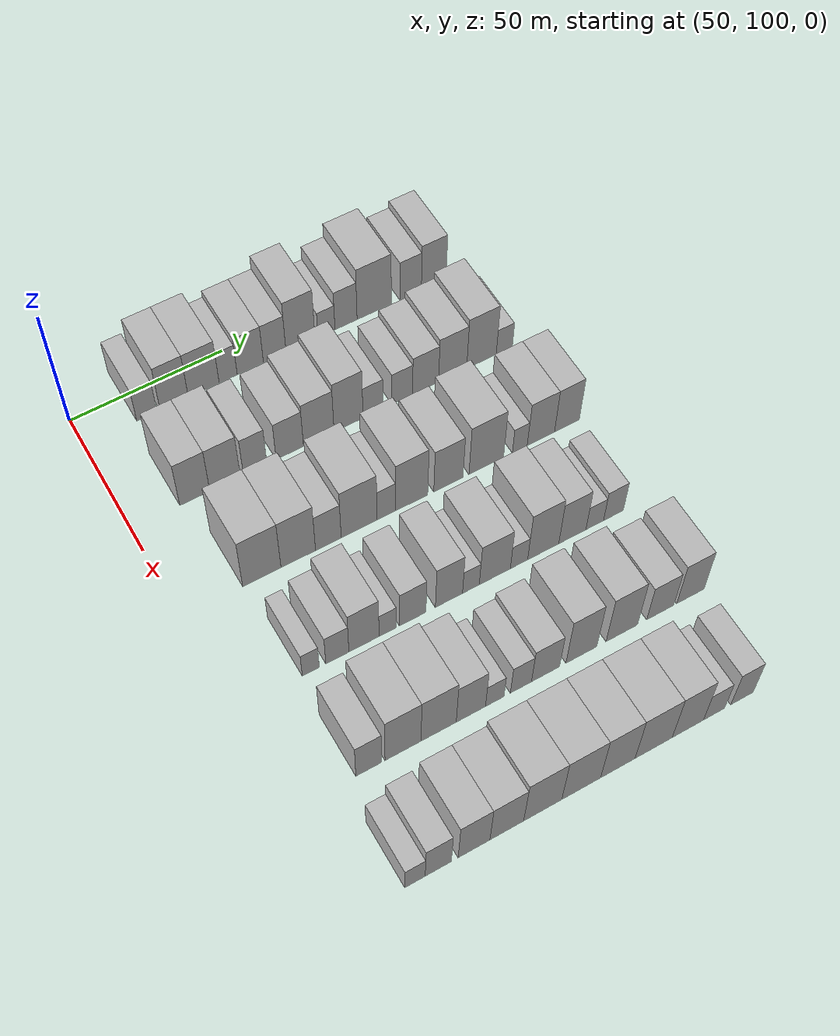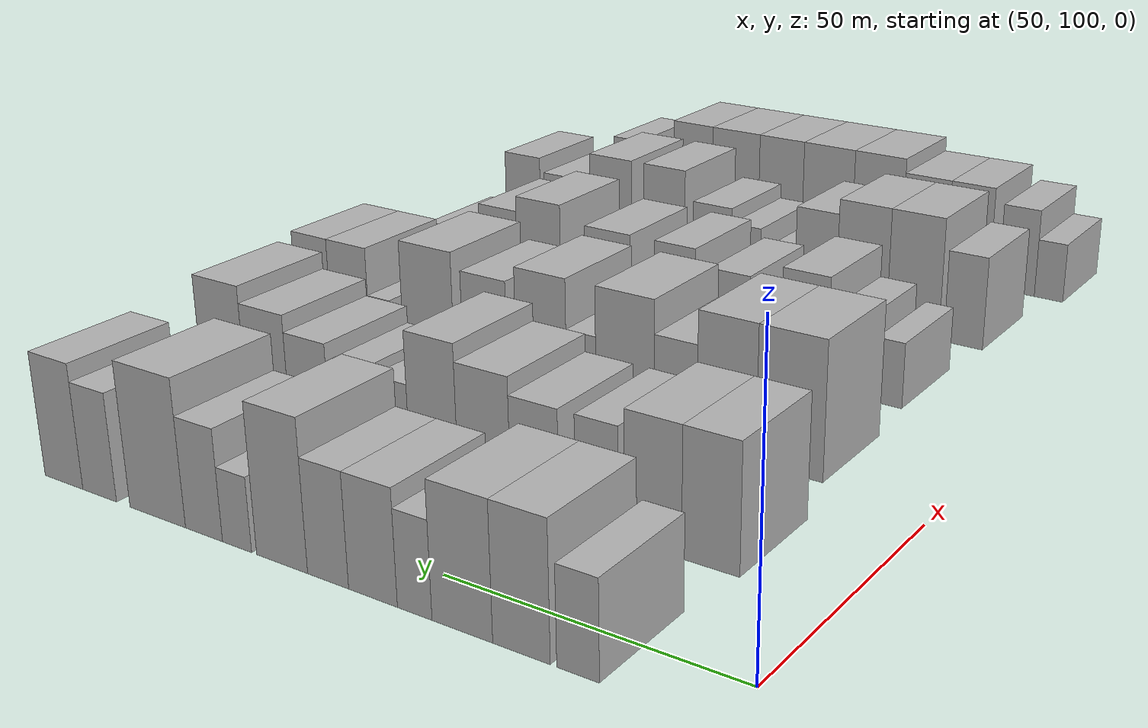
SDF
<sdf version="1.6">
 <world name="default">
  <model name="building_75">
   <static>1</static>
   <pose>50.0000 120.2755 0 0.000000 0.000000 0.000000</pose>
   <link name="link">
    <pose>0 0 7.50 0 0 0</pose>
    <collision name="collision"><geometry><box><size>20.0000 6.5717 15.0000</size></box></geometry></collision>
    <visual name="visual">
     <cast_shadows>0</cast_shadows>
     <geometry><box><size>20.0000 6.5717 15.0000</size></box></geometry>
     <material>
      <script>
       <uri>model://HANNAS_wall/materials/scripts</uri>
       <uri>model://HANNAS_wall/materials/textures</uri>
       <name>vrc/HANNAS_wall</name>
      </script>
     </material>
    </visual>
   </link>
  </model>
  <model name="building_76">
   <static>1</static>
   <pose>50.0000 129.1799 0 0.000000 0.000000 0.000000</pose>
   <link name="link">
    <pose>0 0 10.50 0 0 0</pose>
    <collision name="collision"><geometry><box><size>20.0000 9.2370 21.0000</size></box></geometry></collision>
    <visual name="visual">
     <cast_shadows>0</cast_shadows>
     <geometry><box><size>20.0000 9.2370 21.0000</size></box></geometry>
     <material>
      <script>
       <uri>model://HANNAS_wall/materials/scripts</uri>
       <uri>model://HANNAS_wall/materials/textures</uri>
       <name>vrc/HANNAS_wall</name>
      </script>
     </material>
    </visual>
   </link>
  </model>
  <model name="building_77">
   <static>1</static>
   <pose>50.0000 138.8869 0 0.000000 0.000000 0.000000</pose>
   <link name="link">
    <pose>0 0 10.50 0 0 0</pose>
    <collision name="collision"><geometry><box><size>20.0000 10.1770 21.0000</size></box></geometry></collision>
    <visual name="visual">
     <cast_shadows>0</cast_shadows>
     <geometry><box><size>20.0000 10.1770 21.0000</size></box></geometry>
     <material>
      <script>
       <uri>model://HANNAS_wall/materials/scripts</uri>
       <uri>model://HANNAS_wall/materials/textures</uri>
       <name>vrc/HANNAS_wall</name>
      </script>
     </material>
    </visual>
   </link>
  </model>
  <model name="building_78">
   <static>1</static>
   <pose>50.0000 146.9832 0 0.000000 0.000000 0.000000</pose>
   <link name="link">
    <pose>0 0 7.50 0 0 0</pose>
    <collision name="collision"><geometry><box><size>20.0000 6.0156 15.0000</size></box></geometry></collision>
    <visual name="visual">
     <cast_shadows>0</cast_shadows>
     <geometry><box><size>20.0000 6.0156 15.0000</size></box></geometry>
     <material>
      <script>
       <uri>model://HANNAS_wall/materials/scripts</uri>
       <uri>model://HANNAS_wall/materials/textures</uri>
       <name>vrc/HANNAS_wall</name>
      </script>
     </material>
    </visual>
   </link>
  </model>
  <model name="building_79">
   <static>1</static>
   <pose>50.0000 154.3775 0 0.000000 0.000000 0.000000</pose>
   <link name="link">
    <pose>0 0 9.00 0 0 0</pose>
    <collision name="collision"><geometry><box><size>20.0000 8.7729 18.0000</size></box></geometry></collision>
    <visual name="visual">
     <cast_shadows>0</cast_shadows>
     <geometry><box><size>20.0000 8.7729 18.0000</size></box></geometry>
     <material>
      <script>
       <uri>model://HANNAS_wall/materials/scripts</uri>
       <uri>model://HANNAS_wall/materials/textures</uri>
       <name>vrc/HANNAS_wall</name>
      </script>
     </material>
    </visual>
   </link>
  </model>
  <model name="building_80">
   <static>1</static>
   <pose>50.0000 162.5872 0 0.000000 0.000000 0.000000</pose>
   <link name="link">
    <pose>0 0 9.00 0 0 0</pose>
    <collision name="collision"><geometry><box><size>20.0000 7.6464 18.0000</size></box></geometry></collision>
    <visual name="visual">
     <cast_shadows>0</cast_shadows>
     <geometry><box><size>20.0000 7.6464 18.0000</size></box></geometry>
     <material>
      <script>
       <uri>model://HANNAS_wall/materials/scripts</uri>
       <uri>model://HANNAS_wall/materials/textures</uri>
       <name>vrc/HANNAS_wall</name>
      </script>
     </material>
    </visual>
   </link>
  </model>
  <model name="building_81">
   <static>1</static>
   <pose>50.0000 171.3470 0 0.000000 0.000000 0.000000</pose>
   <link name="link">
    <pose>0 0 12.00 0 0 0</pose>
    <collision name="collision"><geometry><box><size>20.0000 9.8732 24.0000</size></box></geometry></collision>
    <visual name="visual">
     <cast_shadows>0</cast_shadows>
     <geometry><box><size>20.0000 9.8732 24.0000</size></box></geometry>
     <material>
      <script>
       <uri>model://HANNAS_wall/materials/scripts</uri>
       <uri>model://HANNAS_wall/materials/textures</uri>
       <name>vrc/HANNAS_wall</name>
      </script>
     </material>
    </visual>
   </link>
  </model>
  <model name="building_82">
   <static>1</static>
   <pose>50.0000 180.2058 0 0.000000 0.000000 0.000000</pose>
   <link name="link">
    <pose>0 0 6.00 0 0 0</pose>
    <collision name="collision"><geometry><box><size>20.0000 5.8445 12.0000</size></box></geometry></collision>
    <visual name="visual">
     <cast_shadows>0</cast_shadows>
     <geometry><box><size>20.0000 5.8445 12.0000</size></box></geometry>
     <material>
      <script>
       <uri>model://HANNAS_wall/materials/scripts</uri>
       <uri>model://HANNAS_wall/materials/textures</uri>
       <name>vrc/HANNAS_wall</name>
      </script>
     </material>
    </visual>
   </link>
  </model>
  <model name="building_83">
   <static>1</static>
   <pose>50.0000 186.9582 0 0.000000 0.000000 0.000000</pose>
   <link name="link">
    <pose>0 0 9.00 0 0 0</pose>
    <collision name="collision"><geometry><box><size>20.0000 7.6602 18.0000</size></box></geometry></collision>
    <visual name="visual">
     <cast_shadows>0</cast_shadows>
     <geometry><box><size>20.0000 7.6602 18.0000</size></box></geometry>
     <material>
      <script>
       <uri>model://HANNAS_wall/materials/scripts</uri>
       <uri>model://HANNAS_wall/materials/textures</uri>
       <name>vrc/HANNAS_wall</name>
      </script>
     </material>
    </visual>
   </link>
  </model>
  <model name="building_84">
   <static>1</static>
   <pose>50.0000 196.7617 0 0.000000 0.000000 0.000000</pose>
   <link name="link">
    <pose>0 0 12.00 0 0 0</pose>
    <collision name="collision"><geometry><box><size>20.0000 11.9470 24.0000</size></box></geometry></collision>
    <visual name="visual">
     <cast_shadows>0</cast_shadows>
     <geometry><box><size>20.0000 11.9470 24.0000</size></box></geometry>
     <material>
      <script>
       <uri>model://HANNAS_wall/materials/scripts</uri>
       <uri>model://HANNAS_wall/materials/textures</uri>
       <name>vrc/HANNAS_wall</name>
      </script>
     </material>
    </visual>
   </link>
  </model>
  <model name="building_85">
   <static>1</static>
   <pose>50.0000 209.5444 0 0.000000 0.000000 0.000000</pose>
   <link name="link">
    <pose>0 0 9.00 0 0 0</pose>
    <collision name="collision"><geometry><box><size>20.0000 7.6185 18.0000</size></box></geometry></collision>
    <visual name="visual">
     <cast_shadows>0</cast_shadows>
     <geometry><box><size>20.0000 7.6185 18.0000</size></box></geometry>
     <material>
      <script>
       <uri>model://HANNAS_wall/materials/scripts</uri>
       <uri>model://HANNAS_wall/materials/textures</uri>
       <name>vrc/HANNAS_wall</name>
      </script>
     </material>
    </visual>
   </link>
  </model>
  <model name="building_86">
   <static>1</static>
   <pose>50.0000 217.7589 0 0.000000 0.000000 0.000000</pose>
   <link name="link">
    <pose>0 0 10.50 0 0 0</pose>
    <collision name="collision"><geometry><box><size>20.0000 8.8104 21.0000</size></box></geometry></collision>
    <visual name="visual">
     <cast_shadows>0</cast_shadows>
     <geometry><box><size>20.0000 8.8104 21.0000</size></box></geometry>
     <material>
      <script>
       <uri>model://HANNAS_wall/materials/scripts</uri>
       <uri>model://HANNAS_wall/materials/textures</uri>
       <name>vrc/HANNAS_wall</name>
      </script>
     </material>
    </visual>
   </link>
  </model>
  <model name="building_189">
   <static>1</static>
   <pose>82.0000 120.0380 0 0.000000 0.000000 0.000000</pose>
   <link name="link">
    <pose>0 0 10.50 0 0 0</pose>
    <collision name="collision"><geometry><box><size>20.0000 9.5446 21.0000</size></box></geometry></collision>
    <visual name="visual">
     <cast_shadows>0</cast_shadows>
     <geometry><box><size>20.0000 9.5446 21.0000</size></box></geometry>
     <material>
      <script>
       <uri>model://HANNAS_wall/materials/scripts</uri>
       <uri>model://HANNAS_wall/materials/textures</uri>
       <name>vrc/HANNAS_wall</name>
      </script>
     </material>
    </visual>
   </link>
  </model>
  <model name="building_190">
   <static>1</static>
   <pose>82.0000 129.6948 0 0.000000 0.000000 0.000000</pose>
   <link name="link">
    <pose>0 0 10.50 0 0 0</pose>
    <collision name="collision"><geometry><box><size>20.0000 9.7689 21.0000</size></box></geometry></collision>
    <visual name="visual">
     <cast_shadows>0</cast_shadows>
     <geometry><box><size>20.0000 9.7689 21.0000</size></box></geometry>
     <material>
      <script>
       <uri>model://HANNAS_wall/materials/scripts</uri>
       <uri>model://HANNAS_wall/materials/textures</uri>
       <name>vrc/HANNAS_wall</name>
      </script>
     </material>
    </visual>
   </link>
  </model>
  <model name="building_191">
   <static>1</static>
   <pose>82.0000 139.3834 0 0.000000 0.000000 0.000000</pose>
   <link name="link">
    <pose>0 0 9.00 0 0 0</pose>
    <collision name="collision"><geometry><box><size>20.0000 7.6084 18.0000</size></box></geometry></collision>
    <visual name="visual">
     <cast_shadows>0</cast_shadows>
     <geometry><box><size>20.0000 7.6084 18.0000</size></box></geometry>
     <material>
      <script>
       <uri>model://HANNAS_wall/materials/scripts</uri>
       <uri>model://HANNAS_wall/materials/textures</uri>
       <name>vrc/HANNAS_wall</name>
      </script>
     </material>
    </visual>
   </link>
  </model>
  <model name="building_192">
   <static>1</static>
   <pose>82.0000 150.6680 0 0.000000 0.000000 0.000000</pose>
   <link name="link">
    <pose>0 0 9.00 0 0 0</pose>
    <collision name="collision"><geometry><box><size>20.0000 8.9606 18.0000</size></box></geometry></collision>
    <visual name="visual">
     <cast_shadows>0</cast_shadows>
     <geometry><box><size>20.0000 8.9606 18.0000</size></box></geometry>
     <material>
      <script>
       <uri>model://HANNAS_wall/materials/scripts</uri>
       <uri>model://HANNAS_wall/materials/textures</uri>
       <name>vrc/HANNAS_wall</name>
      </script>
     </material>
    </visual>
   </link>
  </model>
  <model name="building_193">
   <static>1</static>
   <pose>82.0000 160.1990 0 0.000000 0.000000 0.000000</pose>
   <link name="link">
    <pose>0 0 10.50 0 0 0</pose>
    <collision name="collision"><geometry><box><size>20.0000 10.1015 21.0000</size></box></geometry></collision>
    <visual name="visual">
     <cast_shadows>0</cast_shadows>
     <geometry><box><size>20.0000 10.1015 21.0000</size></box></geometry>
     <material>
      <script>
       <uri>model://HANNAS_wall/materials/scripts</uri>
       <uri>model://HANNAS_wall/materials/textures</uri>
       <name>vrc/HANNAS_wall</name>
      </script>
     </material>
    </visual>
   </link>
  </model>
  <model name="building_194">
   <static>1</static>
   <pose>82.0000 170.0852 0 0.000000 0.000000 0.000000</pose>
   <link name="link">
    <pose>0 0 12.00 0 0 0</pose>
    <collision name="collision"><geometry><box><size>20.0000 9.6710 24.0000</size></box></geometry></collision>
    <visual name="visual">
     <cast_shadows>0</cast_shadows>
     <geometry><box><size>20.0000 9.6710 24.0000</size></box></geometry>
     <material>
      <script>
       <uri>model://HANNAS_wall/materials/scripts</uri>
       <uri>model://HANNAS_wall/materials/textures</uri>
       <name>vrc/HANNAS_wall</name>
      </script>
     </material>
    </visual>
   </link>
  </model>
  <model name="building_195">
   <static>1</static>
   <pose>82.0000 178.2775 0 0.000000 0.000000 0.000000</pose>
   <link name="link">
    <pose>0 0 7.50 0 0 0</pose>
    <collision name="collision"><geometry><box><size>20.0000 6.7136 15.0000</size></box></geometry></collision>
    <visual name="visual">
     <cast_shadows>0</cast_shadows>
     <geometry><box><size>20.0000 6.7136 15.0000</size></box></geometry>
     <material>
      <script>
       <uri>model://HANNAS_wall/materials/scripts</uri>
       <uri>model://HANNAS_wall/materials/textures</uri>
       <name>vrc/HANNAS_wall</name>
      </script>
     </material>
    </visual>
   </link>
  </model>
  <model name="building_196">
   <static>1</static>
   <pose>82.0000 188.1583 0 0.000000 0.000000 0.000000</pose>
   <link name="link">
    <pose>0 0 7.50 0 0 0</pose>
    <collision name="collision"><geometry><box><size>20.0000 7.0480 15.0000</size></box></geometry></collision>
    <visual name="visual">
     <cast_shadows>0</cast_shadows>
     <geometry><box><size>20.0000 7.0480 15.0000</size></box></geometry>
     <material>
      <script>
       <uri>model://HANNAS_wall/materials/scripts</uri>
       <uri>model://HANNAS_wall/materials/textures</uri>
       <name>vrc/HANNAS_wall</name>
      </script>
     </material>
    </visual>
   </link>
  </model>
  <model name="building_197">
   <static>1</static>
   <pose>82.0000 196.1371 0 0.000000 0.000000 0.000000</pose>
   <link name="link">
    <pose>0 0 9.00 0 0 0</pose>
    <collision name="collision"><geometry><box><size>20.0000 8.9096 18.0000</size></box></geometry></collision>
    <visual name="visual">
     <cast_shadows>0</cast_shadows>
     <geometry><box><size>20.0000 8.9096 18.0000</size></box></geometry>
     <material>
      <script>
       <uri>model://HANNAS_wall/materials/scripts</uri>
       <uri>model://HANNAS_wall/materials/textures</uri>
       <name>vrc/HANNAS_wall</name>
      </script>
     </material>
    </visual>
   </link>
  </model>
  <model name="building_198">
   <static>1</static>
   <pose>82.0000 205.4605 0 0.000000 0.000000 0.000000</pose>
   <link name="link">
    <pose>0 0 10.50 0 0 0</pose>
    <collision name="collision"><geometry><box><size>20.0000 9.7372 21.0000</size></box></geometry></collision>
    <visual name="visual">
     <cast_shadows>0</cast_shadows>
     <geometry><box><size>20.0000 9.7372 21.0000</size></box></geometry>
     <material>
      <script>
       <uri>model://HANNAS_wall/materials/scripts</uri>
       <uri>model://HANNAS_wall/materials/textures</uri>
       <name>vrc/HANNAS_wall</name>
      </script>
     </material>
    </visual>
   </link>
  </model>
  <model name="building_199">
   <static>1</static>
   <pose>82.0000 215.4899 0 0.000000 0.000000 0.000000</pose>
   <link name="link">
    <pose>0 0 12.00 0 0 0</pose>
    <collision name="collision"><geometry><box><size>20.0000 10.3216 24.0000</size></box></geometry></collision>
    <visual name="visual">
     <cast_shadows>0</cast_shadows>
     <geometry><box><size>20.0000 10.3216 24.0000</size></box></geometry>
     <material>
      <script>
       <uri>model://HANNAS_wall/materials/scripts</uri>
       <uri>model://HANNAS_wall/materials/textures</uri>
       <name>vrc/HANNAS_wall</name>
      </script>
     </material>
    </visual>
   </link>
  </model>
  <model name="building_200">
   <static>1</static>
   <pose>82.0000 223.4922 0 0.000000 0.000000 0.000000</pose>
   <link name="link">
    <pose>0 0 6.00 0 0 0</pose>
    <collision name="collision"><geometry><box><size>20.0000 5.6828 12.0000</size></box></geometry></collision>
    <visual name="visual">
     <cast_shadows>0</cast_shadows>
     <geometry><box><size>20.0000 5.6828 12.0000</size></box></geometry>
     <material>
      <script>
       <uri>model://HANNAS_wall/materials/scripts</uri>
       <uri>model://HANNAS_wall/materials/textures</uri>
       <name>vrc/HANNAS_wall</name>
      </script>
     </material>
    </visual>
   </link>
  </model>
  <model name="building_309">
   <static>1</static>
   <pose>114.0000 124.8680 0 0.000000 0.000000 0.000000</pose>
   <link name="link">
    <pose>0 0 12.00 0 0 0</pose>
    <collision name="collision"><geometry><box><size>20.0000 11.9555 24.0000</size></box></geometry></collision>
    <visual name="visual">
     <cast_shadows>0</cast_shadows>
     <geometry><box><size>20.0000 11.9555 24.0000</size></box></geometry>
     <material>
      <script>
       <uri>model://HANNAS_wall/materials/scripts</uri>
       <uri>model://HANNAS_wall/materials/textures</uri>
       <name>vrc/HANNAS_wall</name>
      </script>
     </material>
    </visual>
   </link>
  </model>
  <model name="building_310">
   <static>1</static>
   <pose>114.0000 136.3082 0 0.000000 0.000000 0.000000</pose>
   <link name="link">
    <pose>0 0 12.00 0 0 0</pose>
    <collision name="collision"><geometry><box><size>20.0000 10.9248 24.0000</size></box></geometry></collision>
    <visual name="visual">
     <cast_shadows>0</cast_shadows>
     <geometry><box><size>20.0000 10.9248 24.0000</size></box></geometry>
     <material>
      <script>
       <uri>model://HANNAS_wall/materials/scripts</uri>
       <uri>model://HANNAS_wall/materials/textures</uri>
       <name>vrc/HANNAS_wall</name>
      </script>
     </material>
    </visual>
   </link>
  </model>
  <model name="building_311">
   <static>1</static>
   <pose>114.0000 145.8662 0 0.000000 0.000000 0.000000</pose>
   <link name="link">
    <pose>0 0 9.00 0 0 0</pose>
    <collision name="collision"><geometry><box><size>20.0000 8.1913 18.0000</size></box></geometry></collision>
    <visual name="visual">
     <cast_shadows>0</cast_shadows>
     <geometry><box><size>20.0000 8.1913 18.0000</size></box></geometry>
     <material>
      <script>
       <uri>model://HANNAS_wall/materials/scripts</uri>
       <uri>model://HANNAS_wall/materials/textures</uri>
       <name>vrc/HANNAS_wall</name>
      </script>
     </material>
    </visual>
   </link>
  </model>
  <model name="building_312">
   <static>1</static>
   <pose>114.0000 155.7512 0 0.000000 0.000000 0.000000</pose>
   <link name="link">
    <pose>0 0 12.00 0 0 0</pose>
    <collision name="collision"><geometry><box><size>20.0000 11.5787 24.0000</size></box></geometry></collision>
    <visual name="visual">
     <cast_shadows>0</cast_shadows>
     <geometry><box><size>20.0000 11.5787 24.0000</size></box></geometry>
     <material>
      <script>
       <uri>model://HANNAS_wall/materials/scripts</uri>
       <uri>model://HANNAS_wall/materials/textures</uri>
       <name>vrc/HANNAS_wall</name>
      </script>
     </material>
    </visual>
   </link>
  </model>
  <model name="building_313">
   <static>1</static>
   <pose>114.0000 164.5417 0 0.000000 0.000000 0.000000</pose>
   <link name="link">
    <pose>0 0 7.50 0 0 0</pose>
    <collision name="collision"><geometry><box><size>20.0000 6.0023 15.0000</size></box></geometry></collision>
    <visual name="visual">
     <cast_shadows>0</cast_shadows>
     <geometry><box><size>20.0000 6.0023 15.0000</size></box></geometry>
     <material>
      <script>
       <uri>model://HANNAS_wall/materials/scripts</uri>
       <uri>model://HANNAS_wall/materials/textures</uri>
       <name>vrc/HANNAS_wall</name>
      </script>
     </material>
    </visual>
   </link>
  </model>
  <model name="building_314">
   <static>1</static>
   <pose>114.0000 172.8252 0 0.000000 0.000000 0.000000</pose>
   <link name="link">
    <pose>0 0 12.00 0 0 0</pose>
    <collision name="collision"><geometry><box><size>20.0000 10.5645 24.0000</size></box></geometry></collision>
    <visual name="visual">
     <cast_shadows>0</cast_shadows>
     <geometry><box><size>20.0000 10.5645 24.0000</size></box></geometry>
     <material>
      <script>
       <uri>model://HANNAS_wall/materials/scripts</uri>
       <uri>model://HANNAS_wall/materials/textures</uri>
       <name>vrc/HANNAS_wall</name>
      </script>
     </material>
    </visual>
   </link>
  </model>
  <model name="building_315">
   <static>1</static>
   <pose>114.0000 184.9680 0 0.000000 0.000000 0.000000</pose>
   <link name="link">
    <pose>0 0 10.50 0 0 0</pose>
    <collision name="collision"><geometry><box><size>20.0000 9.7212 21.0000</size></box></geometry></collision>
    <visual name="visual">
     <cast_shadows>0</cast_shadows>
     <geometry><box><size>20.0000 9.7212 21.0000</size></box></geometry>
     <material>
      <script>
       <uri>model://HANNAS_wall/materials/scripts</uri>
       <uri>model://HANNAS_wall/materials/textures</uri>
       <name>vrc/HANNAS_wall</name>
      </script>
     </material>
    </visual>
   </link>
  </model>
  <model name="building_316">
   <static>1</static>
   <pose>114.0000 197.6597 0 0.000000 0.000000 0.000000</pose>
   <link name="link">
    <pose>0 0 12.00 0 0 0</pose>
    <collision name="collision"><geometry><box><size>20.0000 11.6621 24.0000</size></box></geometry></collision>
    <visual name="visual">
     <cast_shadows>0</cast_shadows>
     <geometry><box><size>20.0000 11.6621 24.0000</size></box></geometry>
     <material>
      <script>
       <uri>model://HANNAS_wall/materials/scripts</uri>
       <uri>model://HANNAS_wall/materials/textures</uri>
       <name>vrc/HANNAS_wall</name>
      </script>
     </material>
    </visual>
   </link>
  </model>
  <model name="building_317">
   <static>1</static>
   <pose>114.0000 209.0273 0 0.000000 0.000000 0.000000</pose>
   <link name="link">
    <pose>0 0 6.00 0 0 0</pose>
    <collision name="collision"><geometry><box><size>20.0000 5.0732 12.0000</size></box></geometry></collision>
    <visual name="visual">
     <cast_shadows>0</cast_shadows>
     <geometry><box><size>20.0000 5.0732 12.0000</size></box></geometry>
     <material>
      <script>
       <uri>model://HANNAS_wall/materials/scripts</uri>
       <uri>model://HANNAS_wall/materials/textures</uri>
       <name>vrc/HANNAS_wall</name>
      </script>
     </material>
    </visual>
   </link>
  </model>
  <model name="building_318">
   <static>1</static>
   <pose>114.0000 216.2532 0 0.000000 0.000000 0.000000</pose>
   <link name="link">
    <pose>0 0 10.50 0 0 0</pose>
    <collision name="collision"><geometry><box><size>20.0000 9.3784 21.0000</size></box></geometry></collision>
    <visual name="visual">
     <cast_shadows>0</cast_shadows>
     <geometry><box><size>20.0000 9.3784 21.0000</size></box></geometry>
     <material>
      <script>
       <uri>model://HANNAS_wall/materials/scripts</uri>
       <uri>model://HANNAS_wall/materials/textures</uri>
       <name>vrc/HANNAS_wall</name>
      </script>
     </material>
    </visual>
   </link>
  </model>
  <model name="building_319">
   <static>1</static>
   <pose>114.0000 225.2304 0 0.000000 0.000000 0.000000</pose>
   <link name="link">
    <pose>0 0 10.50 0 0 0</pose>
    <collision name="collision"><geometry><box><size>20.0000 8.5760 21.0000</size></box></geometry></collision>
    <visual name="visual">
     <cast_shadows>0</cast_shadows>
     <geometry><box><size>20.0000 8.5760 21.0000</size></box></geometry>
     <material>
      <script>
       <uri>model://HANNAS_wall/materials/scripts</uri>
       <uri>model://HANNAS_wall/materials/textures</uri>
       <name>vrc/HANNAS_wall</name>
      </script>
     </material>
    </visual>
   </link>
  </model>
  <model name="building_426">
   <static>1</static>
   <pose>146.0000 122.9776 0 0.000000 0.000000 0.000000</pose>
   <link name="link">
    <pose>0 0 6.00 0 0 0</pose>
    <collision name="collision"><geometry><box><size>20.0000 5.2051 12.0000</size></box></geometry></collision>
    <visual name="visual">
     <cast_shadows>0</cast_shadows>
     <geometry><box><size>20.0000 5.2051 12.0000</size></box></geometry>
     <material>
      <script>
       <uri>model://HANNAS_wall/materials/scripts</uri>
       <uri>model://HANNAS_wall/materials/textures</uri>
       <name>vrc/HANNAS_wall</name>
      </script>
     </material>
    </visual>
   </link>
  </model>
  <model name="building_427">
   <static>1</static>
   <pose>146.0000 131.1300 0 0.000000 0.000000 0.000000</pose>
   <link name="link">
    <pose>0 0 7.50 0 0 0</pose>
    <collision name="collision"><geometry><box><size>20.0000 7.0998 15.0000</size></box></geometry></collision>
    <visual name="visual">
     <cast_shadows>0</cast_shadows>
     <geometry><box><size>20.0000 7.0998 15.0000</size></box></geometry>
     <material>
      <script>
       <uri>model://HANNAS_wall/materials/scripts</uri>
       <uri>model://HANNAS_wall/materials/textures</uri>
       <name>vrc/HANNAS_wall</name>
      </script>
     </material>
    </visual>
   </link>
  </model>
  <model name="building_428">
   <static>1</static>
   <pose>146.0000 139.3606 0 0.000000 0.000000 0.000000</pose>
   <link name="link">
    <pose>0 0 10.50 0 0 0</pose>
    <collision name="collision"><geometry><box><size>20.0000 9.3614 21.0000</size></box></geometry></collision>
    <visual name="visual">
     <cast_shadows>0</cast_shadows>
     <geometry><box><size>20.0000 9.3614 21.0000</size></box></geometry>
     <material>
      <script>
       <uri>model://HANNAS_wall/materials/scripts</uri>
       <uri>model://HANNAS_wall/materials/textures</uri>
       <name>vrc/HANNAS_wall</name>
      </script>
     </material>
    </visual>
   </link>
  </model>
  <model name="building_429">
   <static>1</static>
   <pose>146.0000 146.7421 0 0.000000 0.000000 0.000000</pose>
   <link name="link">
    <pose>0 0 6.00 0 0 0</pose>
    <collision name="collision"><geometry><box><size>20.0000 5.4017 12.0000</size></box></geometry></collision>
    <visual name="visual">
     <cast_shadows>0</cast_shadows>
     <geometry><box><size>20.0000 5.4017 12.0000</size></box></geometry>
     <material>
      <script>
       <uri>model://HANNAS_wall/materials/scripts</uri>
       <uri>model://HANNAS_wall/materials/textures</uri>
       <name>vrc/HANNAS_wall</name>
      </script>
     </material>
    </visual>
   </link>
  </model>
  <model name="building_430">
   <static>1</static>
   <pose>146.0000 154.6165 0 0.000000 0.000000 0.000000</pose>
   <link name="link">
    <pose>0 0 9.00 0 0 0</pose>
    <collision name="collision"><geometry><box><size>20.0000 8.3471 18.0000</size></box></geometry></collision>
    <visual name="visual">
     <cast_shadows>0</cast_shadows>
     <geometry><box><size>20.0000 8.3471 18.0000</size></box></geometry>
     <material>
      <script>
       <uri>model://HANNAS_wall/materials/scripts</uri>
       <uri>model://HANNAS_wall/materials/textures</uri>
       <name>vrc/HANNAS_wall</name>
      </script>
     </material>
    </visual>
   </link>
  </model>
  <model name="building_431">
   <static>1</static>
   <pose>146.0000 166.1353 0 0.000000 0.000000 0.000000</pose>
   <link name="link">
    <pose>0 0 10.50 0 0 0</pose>
    <collision name="collision"><geometry><box><size>20.0000 8.6906 21.0000</size></box></geometry></collision>
    <visual name="visual">
     <cast_shadows>0</cast_shadows>
     <geometry><box><size>20.0000 8.6906 21.0000</size></box></geometry>
     <material>
      <script>
       <uri>model://HANNAS_wall/materials/scripts</uri>
       <uri>model://HANNAS_wall/materials/textures</uri>
       <name>vrc/HANNAS_wall</name>
      </script>
     </material>
    </visual>
   </link>
  </model>
  <model name="building_432">
   <static>1</static>
   <pose>146.0000 173.1785 0 0.000000 0.000000 0.000000</pose>
   <link name="link">
    <pose>0 0 6.00 0 0 0</pose>
    <collision name="collision"><geometry><box><size>20.0000 5.3957 12.0000</size></box></geometry></collision>
    <visual name="visual">
     <cast_shadows>0</cast_shadows>
     <geometry><box><size>20.0000 5.3957 12.0000</size></box></geometry>
     <material>
      <script>
       <uri>model://HANNAS_wall/materials/scripts</uri>
       <uri>model://HANNAS_wall/materials/textures</uri>
       <name>vrc/HANNAS_wall</name>
      </script>
     </material>
    </visual>
   </link>
  </model>
  <model name="building_433">
   <static>1</static>
   <pose>146.0000 180.9216 0 0.000000 0.000000 0.000000</pose>
   <link name="link">
    <pose>0 0 10.50 0 0 0</pose>
    <collision name="collision"><geometry><box><size>20.0000 10.0905 21.0000</size></box></geometry></collision>
    <visual name="visual">
     <cast_shadows>0</cast_shadows>
     <geometry><box><size>20.0000 10.0905 21.0000</size></box></geometry>
     <material>
      <script>
       <uri>model://HANNAS_wall/materials/scripts</uri>
       <uri>model://HANNAS_wall/materials/textures</uri>
       <name>vrc/HANNAS_wall</name>
      </script>
     </material>
    </visual>
   </link>
  </model>
  <model name="building_434">
   <static>1</static>
   <pose>146.0000 188.7998 0 0.000000 0.000000 0.000000</pose>
   <link name="link">
    <pose>0 0 6.00 0 0 0</pose>
    <collision name="collision"><geometry><box><size>20.0000 5.6660 12.0000</size></box></geometry></collision>
    <visual name="visual">
     <cast_shadows>0</cast_shadows>
     <geometry><box><size>20.0000 5.6660 12.0000</size></box></geometry>
     <material>
      <script>
       <uri>model://HANNAS_wall/materials/scripts</uri>
       <uri>model://HANNAS_wall/materials/textures</uri>
       <name>vrc/HANNAS_wall</name>
      </script>
     </material>
    </visual>
   </link>
  </model>
  <model name="building_435">
   <static>1</static>
   <pose>146.0000 196.7868 0 0.000000 0.000000 0.000000</pose>
   <link name="link">
    <pose>0 0 12.00 0 0 0</pose>
    <collision name="collision"><geometry><box><size>20.0000 10.3079 24.0000</size></box></geometry></collision>
    <visual name="visual">
     <cast_shadows>0</cast_shadows>
     <geometry><box><size>20.0000 10.3079 24.0000</size></box></geometry>
     <material>
      <script>
       <uri>model://HANNAS_wall/materials/scripts</uri>
       <uri>model://HANNAS_wall/materials/textures</uri>
       <name>vrc/HANNAS_wall</name>
      </script>
     </material>
    </visual>
   </link>
  </model>
  <model name="building_436">
   <static>1</static>
   <pose>146.0000 206.4662 0 0.000000 0.000000 0.000000</pose>
   <link name="link">
    <pose>0 0 10.50 0 0 0</pose>
    <collision name="collision"><geometry><box><size>20.0000 9.0509 21.0000</size></box></geometry></collision>
    <visual name="visual">
     <cast_shadows>0</cast_shadows>
     <geometry><box><size>20.0000 9.0509 21.0000</size></box></geometry>
     <material>
      <script>
       <uri>model://HANNAS_wall/materials/scripts</uri>
       <uri>model://HANNAS_wall/materials/textures</uri>
       <name>vrc/HANNAS_wall</name>
      </script>
     </material>
    </visual>
   </link>
  </model>
  <model name="building_437">
   <static>1</static>
   <pose>146.0000 213.9583 0 0.000000 0.000000 0.000000</pose>
   <link name="link">
    <pose>0 0 6.00 0 0 0</pose>
    <collision name="collision"><geometry><box><size>20.0000 5.9334 12.0000</size></box></geometry></collision>
    <visual name="visual">
     <cast_shadows>0</cast_shadows>
     <geometry><box><size>20.0000 5.9334 12.0000</size></box></geometry>
     <material>
      <script>
       <uri>model://HANNAS_wall/materials/scripts</uri>
       <uri>model://HANNAS_wall/materials/textures</uri>
       <name>vrc/HANNAS_wall</name>
      </script>
     </material>
    </visual>
   </link>
  </model>
  <model name="building_438">
   <static>1</static>
   <pose>146.0000 220.2844 0 0.000000 0.000000 0.000000</pose>
   <link name="link">
    <pose>0 0 7.50 0 0 0</pose>
    <collision name="collision"><geometry><box><size>20.0000 6.7188 15.0000</size></box></geometry></collision>
    <visual name="visual">
     <cast_shadows>0</cast_shadows>
     <geometry><box><size>20.0000 6.7188 15.0000</size></box></geometry>
     <material>
      <script>
       <uri>model://HANNAS_wall/materials/scripts</uri>
       <uri>model://HANNAS_wall/materials/textures</uri>
       <name>vrc/HANNAS_wall</name>
      </script>
     </material>
    </visual>
   </link>
  </model>
  <model name="building_545">
   <static>1</static>
   <pose>178.0000 122.8329 0 0.000000 0.000000 0.000000</pose>
   <link name="link">
    <pose>0 0 9.00 0 0 0</pose>
    <collision name="collision"><geometry><box><size>20.0000 7.7232 18.0000</size></box></geometry></collision>
    <visual name="visual">
     <cast_shadows>0</cast_shadows>
     <geometry><box><size>20.0000 7.7232 18.0000</size></box></geometry>
     <material>
      <script>
       <uri>model://HANNAS_wall/materials/scripts</uri>
       <uri>model://HANNAS_wall/materials/textures</uri>
       <name>vrc/HANNAS_wall</name>
      </script>
     </material>
    </visual>
   </link>
  </model>
  <model name="building_546">
   <static>1</static>
   <pose>178.0000 133.1096 0 0.000000 0.000000 0.000000</pose>
   <link name="link">
    <pose>0 0 12.00 0 0 0</pose>
    <collision name="collision"><geometry><box><size>20.0000 10.8303 24.0000</size></box></geometry></collision>
    <visual name="visual">
     <cast_shadows>0</cast_shadows>
     <geometry><box><size>20.0000 10.8303 24.0000</size></box></geometry>
     <material>
      <script>
       <uri>model://HANNAS_wall/materials/scripts</uri>
       <uri>model://HANNAS_wall/materials/textures</uri>
       <name>vrc/HANNAS_wall</name>
      </script>
     </material>
    </visual>
   </link>
  </model>
  <model name="building_547">
   <static>1</static>
   <pose>178.0000 143.9308 0 0.000000 0.000000 0.000000</pose>
   <link name="link">
    <pose>0 0 12.00 0 0 0</pose>
    <collision name="collision"><geometry><box><size>20.0000 10.8120 24.0000</size></box></geometry></collision>
    <visual name="visual">
     <cast_shadows>0</cast_shadows>
     <geometry><box><size>20.0000 10.8120 24.0000</size></box></geometry>
     <material>
      <script>
       <uri>model://HANNAS_wall/materials/scripts</uri>
       <uri>model://HANNAS_wall/materials/textures</uri>
       <name>vrc/HANNAS_wall</name>
      </script>
     </material>
    </visual>
   </link>
  </model>
  <model name="building_548">
   <static>1</static>
   <pose>178.0000 153.8689 0 0.000000 0.000000 0.000000</pose>
   <link name="link">
    <pose>0 0 10.50 0 0 0</pose>
    <collision name="collision"><geometry><box><size>20.0000 9.0641 21.0000</size></box></geometry></collision>
    <visual name="visual">
     <cast_shadows>0</cast_shadows>
     <geometry><box><size>20.0000 9.0641 21.0000</size></box></geometry>
     <material>
      <script>
       <uri>model://HANNAS_wall/materials/scripts</uri>
       <uri>model://HANNAS_wall/materials/textures</uri>
       <name>vrc/HANNAS_wall</name>
      </script>
     </material>
    </visual>
   </link>
  </model>
  <model name="building_549">
   <static>1</static>
   <pose>178.0000 161.2811 0 0.000000 0.000000 0.000000</pose>
   <link name="link">
    <pose>0 0 6.00 0 0 0</pose>
    <collision name="collision"><geometry><box><size>20.0000 5.7603 12.0000</size></box></geometry></collision>
    <visual name="visual">
     <cast_shadows>0</cast_shadows>
     <geometry><box><size>20.0000 5.7603 12.0000</size></box></geometry>
     <material>
      <script>
       <uri>model://HANNAS_wall/materials/scripts</uri>
       <uri>model://HANNAS_wall/materials/textures</uri>
       <name>vrc/HANNAS_wall</name>
      </script>
     </material>
    </visual>
   </link>
  </model>
  <model name="building_550">
   <static>1</static>
   <pose>178.0000 169.4821 0 0.000000 0.000000 0.000000</pose>
   <link name="link">
    <pose>0 0 7.50 0 0 0</pose>
    <collision name="collision"><geometry><box><size>20.0000 6.6418 15.0000</size></box></geometry></collision>
    <visual name="visual">
     <cast_shadows>0</cast_shadows>
     <geometry><box><size>20.0000 6.6418 15.0000</size></box></geometry>
     <material>
      <script>
       <uri>model://HANNAS_wall/materials/scripts</uri>
       <uri>model://HANNAS_wall/materials/textures</uri>
       <name>vrc/HANNAS_wall</name>
      </script>
     </material>
    </visual>
   </link>
  </model>
  <model name="building_551">
   <static>1</static>
   <pose>178.0000 177.2814 0 0.000000 0.000000 0.000000</pose>
   <link name="link">
    <pose>0 0 9.00 0 0 0</pose>
    <collision name="collision"><geometry><box><size>20.0000 8.9567 18.0000</size></box></geometry></collision>
    <visual name="visual">
     <cast_shadows>0</cast_shadows>
     <geometry><box><size>20.0000 8.9567 18.0000</size></box></geometry>
     <material>
      <script>
       <uri>model://HANNAS_wall/materials/scripts</uri>
       <uri>model://HANNAS_wall/materials/textures</uri>
       <name>vrc/HANNAS_wall</name>
      </script>
     </material>
    </visual>
   </link>
  </model>
  <model name="building_552">
   <static>1</static>
   <pose>178.0000 188.7272 0 0.000000 0.000000 0.000000</pose>
   <link name="link">
    <pose>0 0 12.00 0 0 0</pose>
    <collision name="collision"><geometry><box><size>20.0000 9.9351 24.0000</size></box></geometry></collision>
    <visual name="visual">
     <cast_shadows>0</cast_shadows>
     <geometry><box><size>20.0000 9.9351 24.0000</size></box></geometry>
     <material>
      <script>
       <uri>model://HANNAS_wall/materials/scripts</uri>
       <uri>model://HANNAS_wall/materials/textures</uri>
       <name>vrc/HANNAS_wall</name>
      </script>
     </material>
    </visual>
   </link>
  </model>
  <model name="building_553">
   <static>1</static>
   <pose>178.0000 201.8357 0 0.000000 0.000000 0.000000</pose>
   <link name="link">
    <pose>0 0 12.00 0 0 0</pose>
    <collision name="collision"><geometry><box><size>20.0000 10.2819 24.0000</size></box></geometry></collision>
    <visual name="visual">
     <cast_shadows>0</cast_shadows>
     <geometry><box><size>20.0000 10.2819 24.0000</size></box></geometry>
     <material>
      <script>
       <uri>model://HANNAS_wall/materials/scripts</uri>
       <uri>model://HANNAS_wall/materials/textures</uri>
       <name>vrc/HANNAS_wall</name>
      </script>
     </material>
    </visual>
   </link>
  </model>
  <model name="building_554">
   <static>1</static>
   <pose>178.0000 214.4402 0 0.000000 0.000000 0.000000</pose>
   <link name="link">
    <pose>0 0 9.00 0 0 0</pose>
    <collision name="collision"><geometry><box><size>20.0000 8.9271 18.0000</size></box></geometry></collision>
    <visual name="visual">
     <cast_shadows>0</cast_shadows>
     <geometry><box><size>20.0000 8.9271 18.0000</size></box></geometry>
     <material>
      <script>
       <uri>model://HANNAS_wall/materials/scripts</uri>
       <uri>model://HANNAS_wall/materials/textures</uri>
       <name>vrc/HANNAS_wall</name>
      </script>
     </material>
    </visual>
   </link>
  </model>
  <model name="building_555">
   <static>1</static>
   <pose>178.0000 224.4748 0 0.000000 0.000000 0.000000</pose>
   <link name="link">
    <pose>0 0 10.50 0 0 0</pose>
    <collision name="collision"><geometry><box><size>20.0000 9.1422 21.0000</size></box></geometry></collision>
    <visual name="visual">
     <cast_shadows>0</cast_shadows>
     <geometry><box><size>20.0000 9.1422 21.0000</size></box></geometry>
     <material>
      <script>
       <uri>model://HANNAS_wall/materials/scripts</uri>
       <uri>model://HANNAS_wall/materials/textures</uri>
       <name>vrc/HANNAS_wall</name>
      </script>
     </material>
    </visual>
   </link>
  </model>
  <model name="building_656">
   <static>1</static>
   <pose>210.0000 118.1551 0 0.000000 0.000000 0.000000</pose>
   <link name="link">
    <pose>0 0 6.00 0 0 0</pose>
    <collision name="collision"><geometry><box><size>20.0000 5.9182 12.0000</size></box></geometry></collision>
    <visual name="visual">
     <cast_shadows>0</cast_shadows>
     <geometry><box><size>20.0000 5.9182 12.0000</size></box></geometry>
     <material>
      <script>
       <uri>model://HANNAS_wall/materials/scripts</uri>
       <uri>model://HANNAS_wall/materials/textures</uri>
       <name>vrc/HANNAS_wall</name>
      </script>
     </material>
    </visual>
   </link>
  </model>
  <model name="building_657">
   <static>1</static>
   <pose>210.0000 124.9513 0 0.000000 0.000000 0.000000</pose>
   <link name="link">
    <pose>0 0 9.00 0 0 0</pose>
    <collision name="collision"><geometry><box><size>20.0000 7.6743 18.0000</size></box></geometry></collision>
    <visual name="visual">
     <cast_shadows>0</cast_shadows>
     <geometry><box><size>20.0000 7.6743 18.0000</size></box></geometry>
     <material>
      <script>
       <uri>model://HANNAS_wall/materials/scripts</uri>
       <uri>model://HANNAS_wall/materials/textures</uri>
       <name>vrc/HANNAS_wall</name>
      </script>
     </material>
    </visual>
   </link>
  </model>
  <model name="building_658">
   <static>1</static>
   <pose>210.0000 135.4966 0 0.000000 0.000000 0.000000</pose>
   <link name="link">
    <pose>0 0 10.50 0 0 0</pose>
    <collision name="collision"><geometry><box><size>20.0000 9.4164 21.0000</size></box></geometry></collision>
    <visual name="visual">
     <cast_shadows>0</cast_shadows>
     <geometry><box><size>20.0000 9.4164 21.0000</size></box></geometry>
     <material>
      <script>
       <uri>model://HANNAS_wall/materials/scripts</uri>
       <uri>model://HANNAS_wall/materials/textures</uri>
       <name>vrc/HANNAS_wall</name>
      </script>
     </material>
    </visual>
   </link>
  </model>
  <model name="building_659">
   <static>1</static>
   <pose>210.0000 145.2729 0 0.000000 0.000000 0.000000</pose>
   <link name="link">
    <pose>0 0 10.50 0 0 0</pose>
    <collision name="collision"><geometry><box><size>20.0000 10.1362 21.0000</size></box></geometry></collision>
    <visual name="visual">
     <cast_shadows>0</cast_shadows>
     <geometry><box><size>20.0000 10.1362 21.0000</size></box></geometry>
     <material>
      <script>
       <uri>model://HANNAS_wall/materials/scripts</uri>
       <uri>model://HANNAS_wall/materials/textures</uri>
       <name>vrc/HANNAS_wall</name>
      </script>
     </material>
    </visual>
   </link>
  </model>
  <model name="building_660">
   <static>1</static>
   <pose>210.0000 156.1289 0 0.000000 0.000000 0.000000</pose>
   <link name="link">
    <pose>0 0 12.00 0 0 0</pose>
    <collision name="collision"><geometry><box><size>20.0000 11.5756 24.0000</size></box></geometry></collision>
    <visual name="visual">
     <cast_shadows>0</cast_shadows>
     <geometry><box><size>20.0000 11.5756 24.0000</size></box></geometry>
     <material>
      <script>
       <uri>model://HANNAS_wall/materials/scripts</uri>
       <uri>model://HANNAS_wall/materials/textures</uri>
       <name>vrc/HANNAS_wall</name>
      </script>
     </material>
    </visual>
   </link>
  </model>
  <model name="building_661">
   <static>1</static>
   <pose>210.0000 167.8959 0 0.000000 0.000000 0.000000</pose>
   <link name="link">
    <pose>0 0 12.00 0 0 0</pose>
    <collision name="collision"><geometry><box><size>20.0000 11.9583 24.0000</size></box></geometry></collision>
    <visual name="visual">
     <cast_shadows>0</cast_shadows>
     <geometry><box><size>20.0000 11.9583 24.0000</size></box></geometry>
     <material>
      <script>
       <uri>model://HANNAS_wall/materials/scripts</uri>
       <uri>model://HANNAS_wall/materials/textures</uri>
       <name>vrc/HANNAS_wall</name>
      </script>
     </material>
    </visual>
   </link>
  </model>
  <model name="building_662">
   <static>1</static>
   <pose>210.0000 179.2527 0 0.000000 0.000000 0.000000</pose>
   <link name="link">
    <pose>0 0 12.00 0 0 0</pose>
    <collision name="collision"><geometry><box><size>20.0000 10.7554 24.0000</size></box></geometry></collision>
    <visual name="visual">
     <cast_shadows>0</cast_shadows>
     <geometry><box><size>20.0000 10.7554 24.0000</size></box></geometry>
     <material>
      <script>
       <uri>model://HANNAS_wall/materials/scripts</uri>
       <uri>model://HANNAS_wall/materials/textures</uri>
       <name>vrc/HANNAS_wall</name>
      </script>
     </material>
    </visual>
   </link>
  </model>
  <model name="building_663">
   <static>1</static>
   <pose>210.0000 190.5024 0 0.000000 0.000000 0.000000</pose>
   <link name="link">
    <pose>0 0 12.00 0 0 0</pose>
    <collision name="collision"><geometry><box><size>20.0000 11.7440 24.0000</size></box></geometry></collision>
    <visual name="visual">
     <cast_shadows>0</cast_shadows>
     <geometry><box><size>20.0000 11.7440 24.0000</size></box></geometry>
     <material>
      <script>
       <uri>model://HANNAS_wall/materials/scripts</uri>
       <uri>model://HANNAS_wall/materials/textures</uri>
       <name>vrc/HANNAS_wall</name>
      </script>
     </material>
    </visual>
   </link>
  </model>
  <model name="building_664">
   <static>1</static>
   <pose>210.0000 201.4027 0 0.000000 0.000000 0.000000</pose>
   <link name="link">
    <pose>0 0 12.00 0 0 0</pose>
    <collision name="collision"><geometry><box><size>20.0000 10.0566 24.0000</size></box></geometry></collision>
    <visual name="visual">
     <cast_shadows>0</cast_shadows>
     <geometry><box><size>20.0000 10.0566 24.0000</size></box></geometry>
     <material>
      <script>
       <uri>model://HANNAS_wall/materials/scripts</uri>
       <uri>model://HANNAS_wall/materials/textures</uri>
       <name>vrc/HANNAS_wall</name>
      </script>
     </material>
    </visual>
   </link>
  </model>
  <model name="building_665">
   <static>1</static>
   <pose>210.0000 209.8297 0 0.000000 0.000000 0.000000</pose>
   <link name="link">
    <pose>0 0 7.50 0 0 0</pose>
    <collision name="collision"><geometry><box><size>20.0000 6.7972 15.0000</size></box></geometry></collision>
    <visual name="visual">
     <cast_shadows>0</cast_shadows>
     <geometry><box><size>20.0000 6.7972 15.0000</size></box></geometry>
     <material>
      <script>
       <uri>model://HANNAS_wall/materials/scripts</uri>
       <uri>model://HANNAS_wall/materials/textures</uri>
       <name>vrc/HANNAS_wall</name>
      </script>
     </material>
    </visual>
   </link>
  </model>
  <model name="building_666">
   <static>1</static>
   <pose>210.0000 218.8868 0 0.000000 0.000000 0.000000</pose>
   <link name="link">
    <pose>0 0 9.00 0 0 0</pose>
    <collision name="collision"><geometry><box><size>20.0000 7.3170 18.0000</size></box></geometry></collision>
    <visual name="visual">
     <cast_shadows>0</cast_shadows>
     <geometry><box><size>20.0000 7.3170 18.0000</size></box></geometry>
     <material>
      <script>
       <uri>model://HANNAS_wall/materials/scripts</uri>
       <uri>model://HANNAS_wall/materials/textures</uri>
       <name>vrc/HANNAS_wall</name>
      </script>
     </material>
    </visual>
   </link>
  </model>
 </world>
</sdf>
